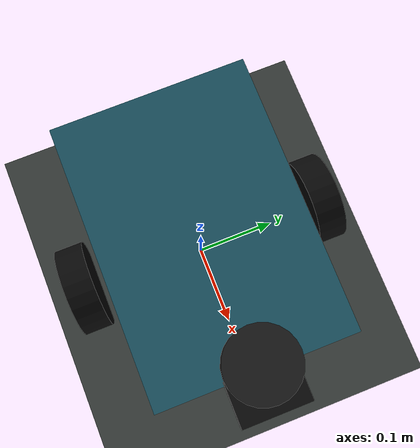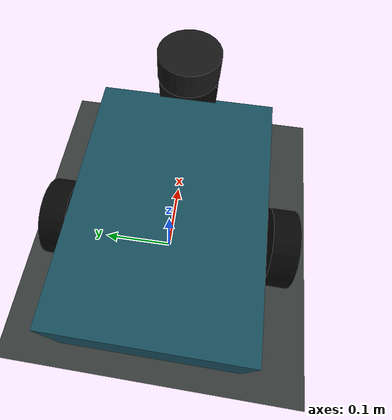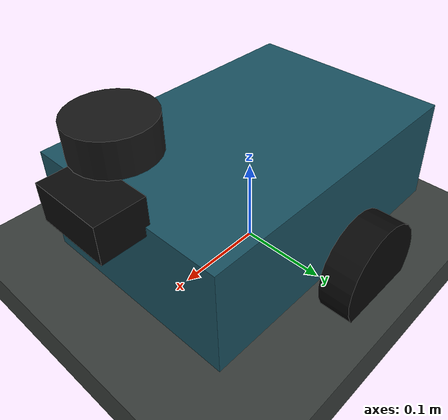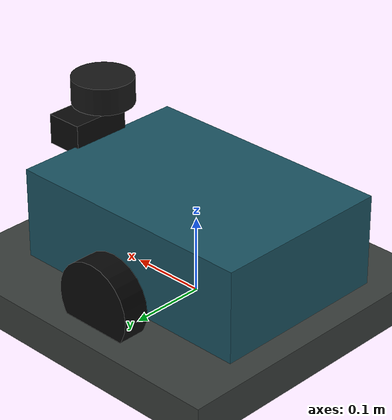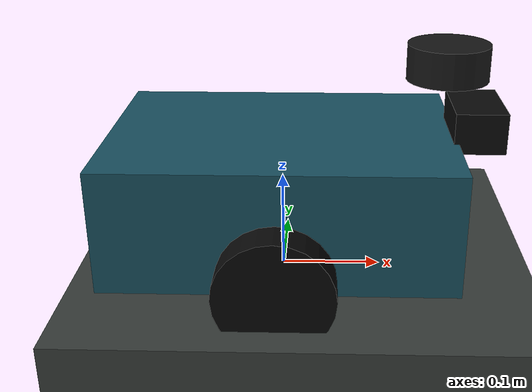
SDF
<?xml version="1.0"?>
<sdf version="1.9">
  <world name="red_ball_world">
    <plugin filename="gz-sim-physics-system" name="gz::sim::systems::Physics"/>
    <plugin filename="gz-sim-user-commands-system" name="gz::sim::systems::UserCommands"/>
    <plugin filename="gz-sim-scene-broadcaster-system" name="gz::sim::systems::SceneBroadcaster"/>
    <plugin filename="gz-sim-sensors-system" name="gz::sim::systems::Sensors">
      <render_engine>ogre2</render_engine>
    </plugin>

    <gravity>0 0 -9.81</gravity>
    <magnetic_field>6e-06 2.3e-05 -4.2e-05</magnetic_field>
    <atmosphere type="adiabatic"/>

    <light name="dim_key_light" type="directional">
      <pose>-2 -3 6 0 0 0</pose>
      <cast_shadows>true</cast_shadows>
      <diffuse>0.22 0.22 0.20 1</diffuse>
      <specular>0.03 0.03 0.03 1</specular>
      <direction>0.4 0.6 -1</direction>
    </light>

    <model name="ground">
      <static>true</static>
      <link name="ground_link">
        <collision name="ground_collision">
          <geometry>
            <box>
              <size>20 20 0.05</size>
            </box>
          </geometry>
        </collision>
        <visual name="ground_visual">
          <geometry>
            <box>
              <size>20 20 0.05</size>
            </box>
          </geometry>
          <material>
            <ambient>0.18 0.19 0.18 1</ambient>
            <diffuse>0.22 0.24 0.23 1</diffuse>
          </material>
        </visual>
      </link>
    </model>

    <include>
      <uri>model://vision_bot</uri>
      <name>vision_bot</name>
      <pose>0 0 0 0 0 0</pose>
    </include>
  </world>
</sdf>

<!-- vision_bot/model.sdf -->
<sdf version="1.9">
  <model name="vision_bot">
    <pose>0 0 0 0 0 0</pose>

    <link name="base_link">
      <pose>0 0 0.09 0 0 0</pose>
      <inertial>
        <mass>2.0</mass>
        <inertia>
          <ixx>0.02</ixx>
          <iyy>0.03</iyy>
          <izz>0.04</izz>
          <ixy>0</ixy>
          <ixz>0</ixz>
          <iyz>0</iyz>
        </inertia>
      </inertial>
      <collision name="base_collision">
        <geometry>
          <box>
            <size>0.34 0.24 0.12</size>
          </box>
        </geometry>
      </collision>
      <visual name="base_visual">
        <geometry>
          <box>
            <size>0.34 0.24 0.12</size>
          </box>
        </geometry>
        <material>
          <ambient>0.08 0.18 0.22 1</ambient>
          <diffuse>0.10 0.32 0.38 1</diffuse>
          <specular>0.1 0.1 0.1 1</specular>
        </material>
      </visual>
    </link>

    <link name="left_wheel">
      <pose>0 0.155 0.055 -1.570796 0 0</pose>
      <inertial>
        <mass>0.25</mass>
        <inertia>
          <ixx>0.0004</ixx>
          <iyy>0.0004</iyy>
          <izz>0.0004</izz>
          <ixy>0</ixy>
          <ixz>0</ixz>
          <iyz>0</iyz>
        </inertia>
      </inertial>
      <collision name="left_wheel_collision">
        <geometry>
          <cylinder>
            <radius>0.055</radius>
            <length>0.035</length>
          </cylinder>
        </geometry>
        <surface>
          <friction>
            <ode>
              <mu>1.0</mu>
              <mu2>1.0</mu2>
            </ode>
          </friction>
        </surface>
      </collision>
      <visual name="left_wheel_visual">
        <geometry>
          <cylinder>
            <radius>0.055</radius>
            <length>0.035</length>
          </cylinder>
        </geometry>
        <material>
          <ambient>0.02 0.02 0.02 1</ambient>
          <diffuse>0.03 0.03 0.03 1</diffuse>
        </material>
      </visual>
    </link>

    <link name="right_wheel">
      <pose>0 -0.155 0.055 -1.570796 0 0</pose>
      <inertial>
        <mass>0.25</mass>
        <inertia>
          <ixx>0.0004</ixx>
          <iyy>0.0004</iyy>
          <izz>0.0004</izz>
          <ixy>0</ixy>
          <ixz>0</ixz>
          <iyz>0</iyz>
        </inertia>
      </inertial>
      <collision name="right_wheel_collision">
        <geometry>
          <cylinder>
            <radius>0.055</radius>
            <length>0.035</length>
          </cylinder>
        </geometry>
        <surface>
          <friction>
            <ode>
              <mu>1.0</mu>
              <mu2>1.0</mu2>
            </ode>
          </friction>
        </surface>
      </collision>
      <visual name="right_wheel_visual">
        <geometry>
          <cylinder>
            <radius>0.055</radius>
            <length>0.035</length>
          </cylinder>
        </geometry>
        <material>
          <ambient>0.02 0.02 0.02 1</ambient>
          <diffuse>0.03 0.03 0.03 1</diffuse>
        </material>
      </visual>
    </link>

    <link name="caster">
      <pose>-0.13 0 0.025 0 0 0</pose>
      <inertial>
        <mass>0.05</mass>
        <inertia>
          <ixx>0.00002</ixx>
          <iyy>0.00002</iyy>
          <izz>0.00002</izz>
          <ixy>0</ixy>
          <ixz>0</ixz>
          <iyz>0</iyz>
        </inertia>
      </inertial>
      <collision name="caster_collision">
        <geometry>
          <sphere>
            <radius>0.025</radius>
          </sphere>
        </geometry>
      </collision>
      <visual name="caster_visual">
        <geometry>
          <sphere>
            <radius>0.025</radius>
          </sphere>
        </geometry>
        <material>
          <ambient>0.15 0.15 0.15 1</ambient>
          <diffuse>0.2 0.2 0.2 1</diffuse>
        </material>
      </visual>
    </link>

    <link name="camera_link">
      <pose>0.19 0 0.16 0 0 0</pose>
      <inertial>
        <mass>0.08</mass>
        <inertia>
          <ixx>0.0001</ixx>
          <iyy>0.0001</iyy>
          <izz>0.0001</izz>
          <ixy>0</ixy>
          <ixz>0</ixz>
          <iyz>0</iyz>
        </inertia>
      </inertial>
      <visual name="camera_body_visual">
        <geometry>
          <box>
            <size>0.05 0.08 0.04</size>
          </box>
        </geometry>
        <material>
          <ambient>0.02 0.02 0.02 1</ambient>
          <diffuse>0.04 0.04 0.04 1</diffuse>
        </material>
      </visual>
      <sensor name="front_camera" type="camera">
        <always_on>true</always_on>
        <update_rate>30</update_rate>
        <topic>/camera/image</topic>
        <camera>
          <horizontal_fov>1.047</horizontal_fov>
          <image>
            <width>640</width>
            <height>480</height>
            <format>R8G8B8</format>
          </image>
          <clip>
            <near>0.05</near>
            <far>8.0</far>
          </clip>
        </camera>
      </sensor>
    </link>

    <link name="lidar_link">
      <pose>0.16 0 0.22 0 0 0</pose>
      <inertial>
        <mass>0.05</mass>
        <inertia>
          <ixx>0.00005</ixx>
          <iyy>0.00005</iyy>
          <izz>0.00005</izz>
          <ixy>0</ixy>
          <ixz>0</ixz>
          <iyz>0</iyz>
        </inertia>
      </inertial>
      <visual name="lidar_body_visual">
        <geometry>
          <cylinder>
            <radius>0.04</radius>
            <length>0.035</length>
          </cylinder>
        </geometry>
        <material>
          <ambient>0.06 0.06 0.06 1</ambient>
          <diffuse>0.09 0.09 0.09 1</diffuse>
        </material>
      </visual>
      <sensor name="front_lidar" type="gpu_lidar">
        <always_on>true</always_on>
        <visualize>true</visualize>
        <update_rate>20</update_rate>
        <topic>/scan</topic>
        <ray>
          <scan>
            <horizontal>
              <samples>181</samples>
              <resolution>1</resolution>
              <min_angle>-1.570796</min_angle>
              <max_angle>1.570796</max_angle>
            </horizontal>
            <vertical>
              <samples>1</samples>
              <resolution>1</resolution>
              <min_angle>0</min_angle>
              <max_angle>0</max_angle>
            </vertical>
          </scan>
          <range>
            <min>0.08</min>
            <max>6.0</max>
            <resolution>0.01</resolution>
          </range>
        </ray>
      </sensor>
    </link>

    <joint name="left_wheel_joint" type="revolute">
      <pose relative_to="left_wheel"/>
      <parent>base_link</parent>
      <child>left_wheel</child>
      <axis>
        <xyz expressed_in="__model__">0 1 0</xyz>
        <limit>
          <lower>-1e16</lower>
          <upper>1e16</upper>
        </limit>
      </axis>
    </joint>

    <joint name="right_wheel_joint" type="revolute">
      <pose relative_to="right_wheel"/>
      <parent>base_link</parent>
      <child>right_wheel</child>
      <axis>
        <xyz expressed_in="__model__">0 1 0</xyz>
        <limit>
          <lower>-1e16</lower>
          <upper>1e16</upper>
        </limit>
      </axis>
    </joint>

    <joint name="caster_joint" type="fixed">
      <parent>base_link</parent>
      <child>caster</child>
    </joint>

    <joint name="camera_joint" type="fixed">
      <parent>base_link</parent>
      <child>camera_link</child>
    </joint>

    <joint name="lidar_joint" type="fixed">
      <parent>base_link</parent>
      <child>lidar_link</child>
    </joint>

    <plugin filename="gz-sim-diff-drive-system" name="gz::sim::systems::DiffDrive">
      <left_joint>left_wheel_joint</left_joint>
      <right_joint>right_wheel_joint</right_joint>
      <wheel_separation>0.31</wheel_separation>
      <wheel_radius>0.055</wheel_radius>
      <topic>/cmd_vel</topic>
      <odom_topic>/odom</odom_topic>
      <tf_topic>/tf</tf_topic>
      <frame_id>odom</frame_id>
      <child_frame_id>base_link</child_frame_id>
      <odom_publish_frequency>30</odom_publish_frequency>
      <max_linear_acceleration>1.0</max_linear_acceleration>
      <max_angular_acceleration>2.0</max_angular_acceleration>
    </plugin>
  </model>
</sdf>
